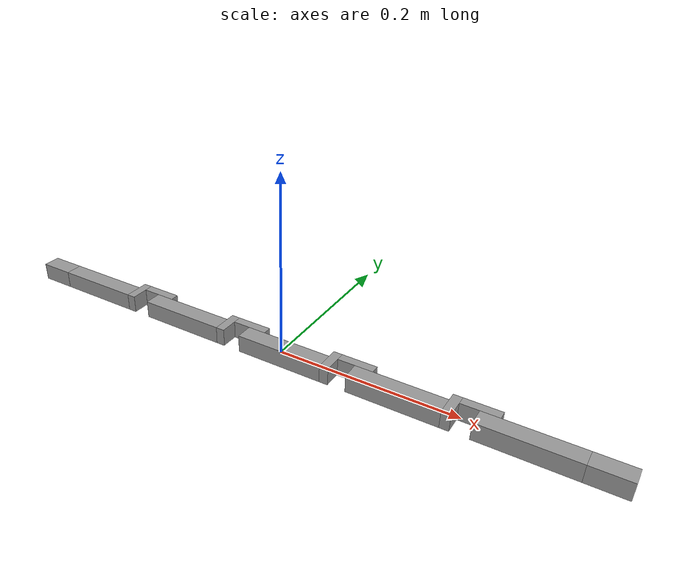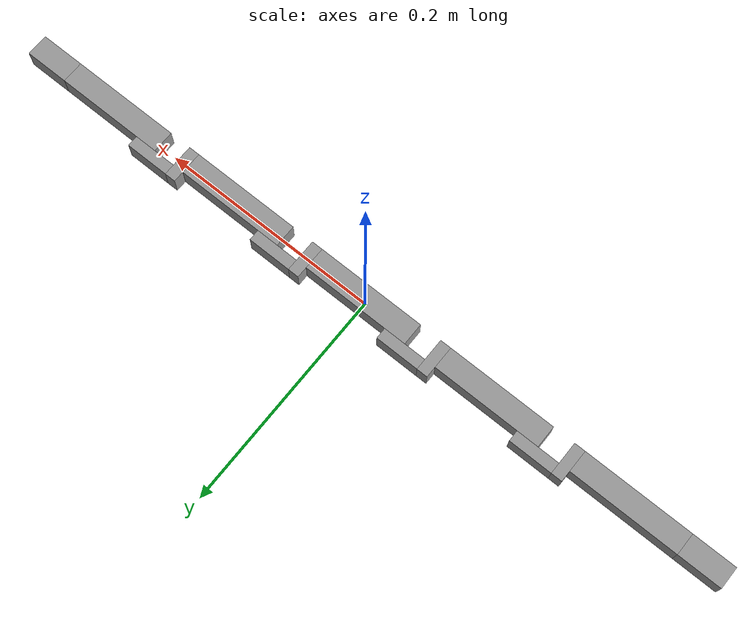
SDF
<?xml version='1.0'?>
<sdf version='1.6'>
  <model name='section_no_joint'>
    <link name='link_0'>
      <inertial>
        <mass>1</mass>
        <inertia>
          <ixx>0.166667</ixx>
          <ixy>0</ixy>
          <ixz>0</ixz>
          <iyy>0.166667</iyy>
          <iyz>0</iyz>
          <izz>0.166667</izz>
        </inertia>
        <pose frame=''>0 0 0 0 -0 0</pose>
      </inertial>
      <pose frame=''>-0.326364 -0.001818 0 0 -0 0</pose>
      <gravity>1</gravity>
      <self_collide>0</self_collide>
      <kinematic>0</kinematic>
      <enable_wind>0</enable_wind>
      <visual name='visual'>
        <pose frame=''>0 0 0 0 -0 0</pose>
        <geometry>
          <box>
            <size>0.04 0.02 0.02</size>
          </box>
        </geometry>
        <material>
          <lighting>1</lighting>
          <script>
            <uri>file://media/materials/scripts/gazebo.material</uri>
            <name>Gazebo/Grey</name>
          </script>
          <shader type='pixel'>
            <normal_map>__default__</normal_map>
          </shader>
          <ambient>0.3 0.3 0.3 1</ambient>
          <diffuse>0.7 0.7 0.7 1</diffuse>
          <specular>0.01 0.01 0.01 1</specular>
          <emissive>0 0 0 1</emissive>
        </material>
        <transparency>0</transparency>
        <cast_shadows>1</cast_shadows>
      </visual>
      <collision name='collision'>
        <laser_retro>0</laser_retro>
        <max_contacts>10</max_contacts>
        <pose frame=''>0 0 0 0 -0 0</pose>
        <geometry>
          <box>
            <size>0.04 0.02 0.02</size>
          </box>
        </geometry>
        <surface>
          <friction>
            <ode>
              <mu>1</mu>
              <mu2>1</mu2>
              <fdir1>0 0 0</fdir1>
              <slip1>0</slip1>
              <slip2>0</slip2>
            </ode>
            <torsional>
              <coefficient>1</coefficient>
              <patch_radius>0</patch_radius>
              <surface_radius>0</surface_radius>
              <use_patch_radius>1</use_patch_radius>
              <ode>
                <slip>0</slip>
              </ode>
            </torsional>
          </friction>
          <bounce>
            <restitution_coefficient>0</restitution_coefficient>
            <threshold>1e+06</threshold>
          </bounce>
          <contact>
            <collide_without_contact>0</collide_without_contact>
            <collide_without_contact_bitmask>1</collide_without_contact_bitmask>
            <collide_bitmask>1</collide_bitmask>
            <ode>
              <soft_cfm>0</soft_cfm>
              <soft_erp>0.2</soft_erp>
              <kp>1e+13</kp>
              <kd>1</kd>
              <max_vel>0.01</max_vel>
              <min_depth>0</min_depth>
            </ode>
            <bullet>
              <split_impulse>1</split_impulse>
              <split_impulse_penetration_threshold>-0.01</split_impulse_penetration_threshold>
              <soft_cfm>0</soft_cfm>
              <soft_erp>0.2</soft_erp>
              <kp>1e+13</kp>
              <kd>1</kd>
            </bullet>
          </contact>
        </surface>
      </collision>
    </link>
    <link name='link_1'>
      <inertial>
        <mass>1</mass>
        <inertia>
          <ixx>0.166667</ixx>
          <ixy>0</ixy>
          <ixz>0</ixz>
          <iyy>0.166667</iyy>
          <iyz>0</iyz>
          <izz>0.166667</izz>
        </inertia>
        <pose frame=''>0 0 0 0 -0 0</pose>
      </inertial>
      <pose frame=''>-0.256364 -0.001818 0 0 -0 0</pose>
      <gravity>1</gravity>
      <self_collide>0</self_collide>
      <kinematic>0</kinematic>
      <enable_wind>0</enable_wind>
      <visual name='visual'>
        <pose frame=''>0 0 0 0 -0 0</pose>
        <geometry>
          <box>
            <size>0.1 0.02 0.02</size>
          </box>
        </geometry>
        <material>
          <lighting>1</lighting>
          <script>
            <uri>file://media/materials/scripts/gazebo.material</uri>
            <name>Gazebo/Grey</name>
          </script>
          <shader type='pixel'>
            <normal_map>__default__</normal_map>
          </shader>
          <ambient>0.3 0.3 0.3 1</ambient>
          <diffuse>0.7 0.7 0.7 1</diffuse>
          <specular>0.01 0.01 0.01 1</specular>
          <emissive>0 0 0 1</emissive>
        </material>
        <transparency>0</transparency>
        <cast_shadows>1</cast_shadows>
      </visual>
      <collision name='collision'>
        <laser_retro>0</laser_retro>
        <max_contacts>10</max_contacts>
        <pose frame=''>0 0 0 0 -0 0</pose>
        <geometry>
          <box>
            <size>0.1 0.02 0.02</size>
          </box>
        </geometry>
        <surface>
          <friction>
            <ode>
              <mu>1</mu>
              <mu2>1</mu2>
              <fdir1>0 0 0</fdir1>
              <slip1>0</slip1>
              <slip2>0</slip2>
            </ode>
            <torsional>
              <coefficient>1</coefficient>
              <patch_radius>0</patch_radius>
              <surface_radius>0</surface_radius>
              <use_patch_radius>1</use_patch_radius>
              <ode>
                <slip>0</slip>
              </ode>
            </torsional>
          </friction>
          <bounce>
            <restitution_coefficient>0</restitution_coefficient>
            <threshold>1e+06</threshold>
          </bounce>
          <contact>
            <collide_without_contact>0</collide_without_contact>
            <collide_without_contact_bitmask>1</collide_without_contact_bitmask>
            <collide_bitmask>1</collide_bitmask>
            <ode>
              <soft_cfm>0</soft_cfm>
              <soft_erp>0.2</soft_erp>
              <kp>1e+13</kp>
              <kd>1</kd>
              <max_vel>0.01</max_vel>
              <min_depth>0</min_depth>
            </ode>
            <bullet>
              <split_impulse>1</split_impulse>
              <split_impulse_penetration_threshold>-0.01</split_impulse_penetration_threshold>
              <soft_cfm>0</soft_cfm>
              <soft_erp>0.2</soft_erp>
              <kp>1e+13</kp>
              <kd>1</kd>
            </bullet>
          </contact>
        </surface>
      </collision>
    </link>
    <link name='link_10'>
      <inertial>
        <mass>1</mass>
        <inertia>
          <ixx>0.166667</ixx>
          <ixy>0</ixy>
          <ixz>0</ixz>
          <iyy>0.166667</iyy>
          <iyz>0</iyz>
          <izz>0.166667</izz>
        </inertia>
        <pose frame=''>0 0 0 0 -0 0</pose>
      </inertial>
      <pose frame=''>0.188636 0.003182 0 0 -0 0</pose>
      <gravity>1</gravity>
      <self_collide>0</self_collide>
      <kinematic>0</kinematic>
      <enable_wind>0</enable_wind>
      <visual name='visual'>
        <pose frame=''>0 0 0 0 -0 0</pose>
        <geometry>
          <box>
            <size>0.01 0.03 0.02</size>
          </box>
        </geometry>
        <material>
          <lighting>1</lighting>
          <script>
            <uri>file://media/materials/scripts/gazebo.material</uri>
            <name>Gazebo/Grey</name>
          </script>
          <shader type='pixel'>
            <normal_map>__default__</normal_map>
          </shader>
          <ambient>0.3 0.3 0.3 1</ambient>
          <diffuse>0.7 0.7 0.7 1</diffuse>
          <specular>0.01 0.01 0.01 1</specular>
          <emissive>0 0 0 1</emissive>
        </material>
        <transparency>0</transparency>
        <cast_shadows>1</cast_shadows>
      </visual>
      <visual name='ModelPreview_0::link_10::visual_1'>
        <pose frame=''>0.025 0.01 0 0 -0 0</pose>
        <geometry>
          <box>
            <size>0.04 0.01 0.02</size>
          </box>
        </geometry>
        <material>
          <lighting>1</lighting>
          <script>
            <uri>file://media/materials/scripts/gazebo.material</uri>
            <name>Gazebo/Grey</name>
          </script>
          <shader type='pixel'>
            <normal_map>__default__</normal_map>
          </shader>
          <ambient>0.3 0.3 0.3 1</ambient>
          <diffuse>0.7 0.7 0.7 1</diffuse>
          <specular>0.01 0.01 0.01 1</specular>
          <emissive>0 0 0 1</emissive>
        </material>
        <transparency>0</transparency>
        <cast_shadows>1</cast_shadows>
      </visual>
      <collision name='collision'>
        <laser_retro>0</laser_retro>
        <max_contacts>10</max_contacts>
        <pose frame=''>0 0 0 0 -0 0</pose>
        <geometry>
          <box>
            <size>0.01 0.03 0.02</size>
          </box>
        </geometry>
        <surface>
          <friction>
            <ode>
              <mu>1</mu>
              <mu2>1</mu2>
              <fdir1>0 0 0</fdir1>
              <slip1>0</slip1>
              <slip2>0</slip2>
            </ode>
            <torsional>
              <coefficient>1</coefficient>
              <patch_radius>0</patch_radius>
              <surface_radius>0</surface_radius>
              <use_patch_radius>1</use_patch_radius>
              <ode>
                <slip>0</slip>
              </ode>
            </torsional>
          </friction>
          <bounce>
            <restitution_coefficient>0</restitution_coefficient>
            <threshold>1e+06</threshold>
          </bounce>
          <contact>
            <collide_without_contact>0</collide_without_contact>
            <collide_without_contact_bitmask>1</collide_without_contact_bitmask>
            <collide_bitmask>1</collide_bitmask>
            <ode>
              <soft_cfm>0</soft_cfm>
              <soft_erp>0.2</soft_erp>
              <kp>1e+13</kp>
              <kd>1</kd>
              <max_vel>0.01</max_vel>
              <min_depth>0</min_depth>
            </ode>
            <bullet>
              <split_impulse>1</split_impulse>
              <split_impulse_penetration_threshold>-0.01</split_impulse_penetration_threshold>
              <soft_cfm>0</soft_cfm>
              <soft_erp>0.2</soft_erp>
              <kp>1e+13</kp>
              <kd>1</kd>
            </bullet>
          </contact>
        </surface>
      </collision>
      <collision name='collision_1'>
        <laser_retro>0</laser_retro>
        <max_contacts>10</max_contacts>
        <pose frame=''>0.025 0.01 0 0 -0 0</pose>
        <geometry>
          <box>
            <size>0.04 0.01 0.02</size>
          </box>
        </geometry>
        <surface>
          <friction>
            <ode>
              <mu>1</mu>
              <mu2>1</mu2>
              <fdir1>0 0 0</fdir1>
              <slip1>0</slip1>
              <slip2>0</slip2>
            </ode>
            <torsional>
              <coefficient>1</coefficient>
              <patch_radius>0</patch_radius>
              <surface_radius>0</surface_radius>
              <use_patch_radius>1</use_patch_radius>
              <ode>
                <slip>0</slip>
              </ode>
            </torsional>
          </friction>
          <bounce>
            <restitution_coefficient>0</restitution_coefficient>
            <threshold>1e+06</threshold>
          </bounce>
          <contact>
            <collide_without_contact>0</collide_without_contact>
            <collide_without_contact_bitmask>1</collide_without_contact_bitmask>
            <collide_bitmask>1</collide_bitmask>
            <ode>
              <soft_cfm>0</soft_cfm>
              <soft_erp>0.2</soft_erp>
              <kp>1e+13</kp>
              <kd>1</kd>
              <max_vel>0.01</max_vel>
              <min_depth>0</min_depth>
            </ode>
            <bullet>
              <split_impulse>1</split_impulse>
              <split_impulse_penetration_threshold>-0.01</split_impulse_penetration_threshold>
              <soft_cfm>0</soft_cfm>
              <soft_erp>0.2</soft_erp>
              <kp>1e+13</kp>
              <kd>1</kd>
            </bullet>
          </contact>
        </surface>
      </collision>
    </link>
    <link name='link_11'>
      <inertial>
        <mass>1</mass>
        <inertia>
          <ixx>0.166667</ixx>
          <ixy>0</ixy>
          <ixz>0</ixz>
          <iyy>0.166667</iyy>
          <iyz>0</iyz>
          <izz>0.166667</izz>
        </inertia>
        <pose frame=''>0 0 0 0 -0 0</pose>
      </inertial>
      <pose frame=''>0.263636 -0.001818 0 0 -0 0</pose>
      <gravity>1</gravity>
      <self_collide>0</self_collide>
      <kinematic>0</kinematic>
      <enable_wind>0</enable_wind>
      <visual name='visual'>
        <pose frame=''>0 0 0 0 -0 0</pose>
        <geometry>
          <box>
            <size>0.1 0.02 0.02</size>
          </box>
        </geometry>
        <material>
          <lighting>1</lighting>
          <script>
            <uri>file://media/materials/scripts/gazebo.material</uri>
            <name>Gazebo/Grey</name>
          </script>
          <shader type='pixel'>
            <normal_map>__default__</normal_map>
          </shader>
          <ambient>0.3 0.3 0.3 1</ambient>
          <diffuse>0.7 0.7 0.7 1</diffuse>
          <specular>0.01 0.01 0.01 1</specular>
          <emissive>0 0 0 1</emissive>
        </material>
        <transparency>0</transparency>
        <cast_shadows>1</cast_shadows>
      </visual>
      <collision name='collision'>
        <laser_retro>0</laser_retro>
        <max_contacts>10</max_contacts>
        <pose frame=''>0 0 0 0 -0 0</pose>
        <geometry>
          <box>
            <size>0.1 0.02 0.02</size>
          </box>
        </geometry>
        <surface>
          <friction>
            <ode>
              <mu>1</mu>
              <mu2>1</mu2>
              <fdir1>0 0 0</fdir1>
              <slip1>0</slip1>
              <slip2>0</slip2>
            </ode>
            <torsional>
              <coefficient>1</coefficient>
              <patch_radius>0</patch_radius>
              <surface_radius>0</surface_radius>
              <use_patch_radius>1</use_patch_radius>
              <ode>
                <slip>0</slip>
              </ode>
            </torsional>
          </friction>
          <bounce>
            <restitution_coefficient>0</restitution_coefficient>
            <threshold>1e+06</threshold>
          </bounce>
          <contact>
            <collide_without_contact>0</collide_without_contact>
            <collide_without_contact_bitmask>1</collide_without_contact_bitmask>
            <collide_bitmask>1</collide_bitmask>
            <ode>
              <soft_cfm>0</soft_cfm>
              <soft_erp>0.2</soft_erp>
              <kp>1e+13</kp>
              <kd>1</kd>
              <max_vel>0.01</max_vel>
              <min_depth>0</min_depth>
            </ode>
            <bullet>
              <split_impulse>1</split_impulse>
              <split_impulse_penetration_threshold>-0.01</split_impulse_penetration_threshold>
              <soft_cfm>0</soft_cfm>
              <soft_erp>0.2</soft_erp>
              <kp>1e+13</kp>
              <kd>1</kd>
            </bullet>
          </contact>
        </surface>
      </collision>
    </link>
    <link name='link_12'>
      <inertial>
        <mass>1</mass>
        <inertia>
          <ixx>0.166667</ixx>
          <ixy>0</ixy>
          <ixz>0</ixz>
          <iyy>0.166667</iyy>
          <iyz>0</iyz>
          <izz>0.166667</izz>
        </inertia>
        <pose frame=''>0 0 0 0 -0 0</pose>
      </inertial>
      <pose frame=''>0.333636 -0.001818 0 0 -0 0</pose>
      <gravity>1</gravity>
      <self_collide>0</self_collide>
      <kinematic>0</kinematic>
      <enable_wind>0</enable_wind>
      <visual name='visual'>
        <pose frame=''>0 0 0 0 -0 0</pose>
        <geometry>
          <box>
            <size>0.04 0.02 0.02</size>
          </box>
        </geometry>
        <material>
          <lighting>1</lighting>
          <script>
            <uri>file://media/materials/scripts/gazebo.material</uri>
            <name>Gazebo/Grey</name>
          </script>
          <shader type='pixel'>
            <normal_map>__default__</normal_map>
          </shader>
          <ambient>0.3 0.3 0.3 1</ambient>
          <diffuse>0.7 0.7 0.7 1</diffuse>
          <specular>0.01 0.01 0.01 1</specular>
          <emissive>0 0 0 1</emissive>
        </material>
        <transparency>0</transparency>
        <cast_shadows>1</cast_shadows>
      </visual>
      <collision name='collision'>
        <laser_retro>0</laser_retro>
        <max_contacts>10</max_contacts>
        <pose frame=''>0 0 0 0 -0 0</pose>
        <geometry>
          <box>
            <size>0.04 0.02 0.02</size>
          </box>
        </geometry>
        <surface>
          <friction>
            <ode>
              <mu>1</mu>
              <mu2>1</mu2>
              <fdir1>0 0 0</fdir1>
              <slip1>0</slip1>
              <slip2>0</slip2>
            </ode>
            <torsional>
              <coefficient>1</coefficient>
              <patch_radius>0</patch_radius>
              <surface_radius>0</surface_radius>
              <use_patch_radius>1</use_patch_radius>
              <ode>
                <slip>0</slip>
              </ode>
            </torsional>
          </friction>
          <bounce>
            <restitution_coefficient>0</restitution_coefficient>
            <threshold>1e+06</threshold>
          </bounce>
          <contact>
            <collide_without_contact>0</collide_without_contact>
            <collide_without_contact_bitmask>1</collide_without_contact_bitmask>
            <collide_bitmask>1</collide_bitmask>
            <ode>
              <soft_cfm>0</soft_cfm>
              <soft_erp>0.2</soft_erp>
              <kp>1e+13</kp>
              <kd>1</kd>
              <max_vel>0.01</max_vel>
              <min_depth>0</min_depth>
            </ode>
            <bullet>
              <split_impulse>1</split_impulse>
              <split_impulse_penetration_threshold>-0.01</split_impulse_penetration_threshold>
              <soft_cfm>0</soft_cfm>
              <soft_erp>0.2</soft_erp>
              <kp>1e+13</kp>
              <kd>1</kd>
            </bullet>
          </contact>
        </surface>
      </collision>
    </link>
    <link name='link_2'>
      <inertial>
        <mass>1</mass>
        <inertia>
          <ixx>0.166667</ixx>
          <ixy>0</ixy>
          <ixz>0</ixz>
          <iyy>0.166667</iyy>
          <iyz>0</iyz>
          <izz>0.166667</izz>
        </inertia>
        <pose frame=''>0 0 0 0 -0 0</pose>
      </inertial>
      <pose frame=''>-0.201364 0.003182 0 0 -0 0</pose>
      <gravity>1</gravity>
      <self_collide>0</self_collide>
      <kinematic>0</kinematic>
      <enable_wind>0</enable_wind>
      <visual name='visual'>
        <pose frame=''>0 0 0 0 -0 0</pose>
        <geometry>
          <box>
            <size>0.01 0.03 0.02</size>
          </box>
        </geometry>
        <material>
          <lighting>1</lighting>
          <script>
            <uri>file://media/materials/scripts/gazebo.material</uri>
            <name>Gazebo/Grey</name>
          </script>
          <shader type='pixel'>
            <normal_map>__default__</normal_map>
          </shader>
          <ambient>0.3 0.3 0.3 1</ambient>
          <diffuse>0.7 0.7 0.7 1</diffuse>
          <specular>0.01 0.01 0.01 1</specular>
          <emissive>0 0 0 1</emissive>
        </material>
        <transparency>0</transparency>
        <cast_shadows>1</cast_shadows>
      </visual>
      <visual name='ModelPreview_0::link_2::visual_1'>
        <pose frame=''>0.025 0.01 0 0 -0 0</pose>
        <geometry>
          <box>
            <size>0.04 0.01 0.02</size>
          </box>
        </geometry>
        <material>
          <lighting>1</lighting>
          <script>
            <uri>file://media/materials/scripts/gazebo.material</uri>
            <name>Gazebo/Grey</name>
          </script>
          <shader type='pixel'>
            <normal_map>__default__</normal_map>
          </shader>
          <ambient>0.3 0.3 0.3 1</ambient>
          <diffuse>0.7 0.7 0.7 1</diffuse>
          <specular>0.01 0.01 0.01 1</specular>
          <emissive>0 0 0 1</emissive>
        </material>
        <transparency>0</transparency>
        <cast_shadows>1</cast_shadows>
      </visual>
      <collision name='collision'>
        <laser_retro>0</laser_retro>
        <max_contacts>10</max_contacts>
        <pose frame=''>0 0 0 0 -0 0</pose>
        <geometry>
          <box>
            <size>0.01 0.03 0.02</size>
          </box>
        </geometry>
        <surface>
          <friction>
            <ode>
              <mu>1</mu>
              <mu2>1</mu2>
              <fdir1>0 0 0</fdir1>
              <slip1>0</slip1>
              <slip2>0</slip2>
            </ode>
            <torsional>
              <coefficient>1</coefficient>
              <patch_radius>0</patch_radius>
              <surface_radius>0</surface_radius>
              <use_patch_radius>1</use_patch_radius>
              <ode>
                <slip>0</slip>
              </ode>
            </torsional>
          </friction>
          <bounce>
            <restitution_coefficient>0</restitution_coefficient>
            <threshold>1e+06</threshold>
          </bounce>
          <contact>
            <collide_without_contact>0</collide_without_contact>
            <collide_without_contact_bitmask>1</collide_without_contact_bitmask>
            <collide_bitmask>1</collide_bitmask>
            <ode>
              <soft_cfm>0</soft_cfm>
              <soft_erp>0.2</soft_erp>
              <kp>1e+13</kp>
              <kd>1</kd>
              <max_vel>0.01</max_vel>
              <min_depth>0</min_depth>
            </ode>
            <bullet>
              <split_impulse>1</split_impulse>
              <split_impulse_penetration_threshold>-0.01</split_impulse_penetration_threshold>
              <soft_cfm>0</soft_cfm>
              <soft_erp>0.2</soft_erp>
              <kp>1e+13</kp>
              <kd>1</kd>
            </bullet>
          </contact>
        </surface>
      </collision>
      <collision name='collision_1'>
        <laser_retro>0</laser_retro>
        <max_contacts>10</max_contacts>
        <pose frame=''>0.025 0.01 0 0 -0 0</pose>
        <geometry>
          <box>
            <size>0.04 0.01 0.02</size>
          </box>
        </geometry>
        <surface>
          <friction>
            <ode>
              <mu>1</mu>
              <mu2>1</mu2>
              <fdir1>0 0 0</fdir1>
              <slip1>0</slip1>
              <slip2>0</slip2>
            </ode>
            <torsional>
              <coefficient>1</coefficient>
              <patch_radius>0</patch_radius>
              <surface_radius>0</surface_radius>
              <use_patch_radius>1</use_patch_radius>
              <ode>
                <slip>0</slip>
              </ode>
            </torsional>
          </friction>
          <bounce>
            <restitution_coefficient>0</restitution_coefficient>
            <threshold>1e+06</threshold>
          </bounce>
          <contact>
            <collide_without_contact>0</collide_without_contact>
            <collide_without_contact_bitmask>1</collide_without_contact_bitmask>
            <collide_bitmask>1</collide_bitmask>
            <ode>
              <soft_cfm>0</soft_cfm>
              <soft_erp>0.2</soft_erp>
              <kp>1e+13</kp>
              <kd>1</kd>
              <max_vel>0.01</max_vel>
              <min_depth>0</min_depth>
            </ode>
            <bullet>
              <split_impulse>1</split_impulse>
              <split_impulse_penetration_threshold>-0.01</split_impulse_penetration_threshold>
              <soft_cfm>0</soft_cfm>
              <soft_erp>0.2</soft_erp>
              <kp>1e+13</kp>
              <kd>1</kd>
            </bullet>
          </contact>
        </surface>
      </collision>
    </link>
    <link name='link_3'>
      <inertial>
        <mass>1</mass>
        <inertia>
          <ixx>0.166667</ixx>
          <ixy>0</ixy>
          <ixz>0</ixz>
          <iyy>0.166667</iyy>
          <iyz>0</iyz>
          <izz>0.166667</izz>
        </inertia>
        <pose frame=''>0 0 0 0 -0 0</pose>
      </inertial>
      <pose frame=''>-0.126364 -0.001818 0 0 -0 0</pose>
      <gravity>1</gravity>
      <self_collide>0</self_collide>
      <kinematic>0</kinematic>
      <enable_wind>0</enable_wind>
      <visual name='visual'>
        <pose frame=''>0 0 0 0 -0 0</pose>
        <geometry>
          <box>
            <size>0.1 0.02 0.02</size>
          </box>
        </geometry>
        <material>
          <lighting>1</lighting>
          <script>
            <uri>file://media/materials/scripts/gazebo.material</uri>
            <name>Gazebo/Grey</name>
          </script>
          <shader type='pixel'>
            <normal_map>__default__</normal_map>
          </shader>
          <ambient>0.3 0.3 0.3 1</ambient>
          <diffuse>0.7 0.7 0.7 1</diffuse>
          <specular>0.01 0.01 0.01 1</specular>
          <emissive>0 0 0 1</emissive>
        </material>
        <transparency>0</transparency>
        <cast_shadows>1</cast_shadows>
      </visual>
      <collision name='collision'>
        <laser_retro>0</laser_retro>
        <max_contacts>10</max_contacts>
        <pose frame=''>0 0 0 0 -0 0</pose>
        <geometry>
          <box>
            <size>0.1 0.02 0.02</size>
          </box>
        </geometry>
        <surface>
          <friction>
            <ode>
              <mu>1</mu>
              <mu2>1</mu2>
              <fdir1>0 0 0</fdir1>
              <slip1>0</slip1>
              <slip2>0</slip2>
            </ode>
            <torsional>
              <coefficient>1</coefficient>
              <patch_radius>0</patch_radius>
              <surface_radius>0</surface_radius>
              <use_patch_radius>1</use_patch_radius>
              <ode>
                <slip>0</slip>
              </ode>
            </torsional>
          </friction>
          <bounce>
            <restitution_coefficient>0</restitution_coefficient>
            <threshold>1e+06</threshold>
          </bounce>
          <contact>
            <collide_without_contact>0</collide_without_contact>
            <collide_without_contact_bitmask>1</collide_without_contact_bitmask>
            <collide_bitmask>1</collide_bitmask>
            <ode>
              <soft_cfm>0</soft_cfm>
              <soft_erp>0.2</soft_erp>
              <kp>1e+13</kp>
              <kd>1</kd>
              <max_vel>0.01</max_vel>
              <min_depth>0</min_depth>
            </ode>
            <bullet>
              <split_impulse>1</split_impulse>
              <split_impulse_penetration_threshold>-0.01</split_impulse_penetration_threshold>
              <soft_cfm>0</soft_cfm>
              <soft_erp>0.2</soft_erp>
              <kp>1e+13</kp>
              <kd>1</kd>
            </bullet>
          </contact>
        </surface>
      </collision>
    </link>
    <link name='link_6'>
      <inertial>
        <mass>1</mass>
        <inertia>
          <ixx>0.166667</ixx>
          <ixy>0</ixy>
          <ixz>0</ixz>
          <iyy>0.166667</iyy>
          <iyz>0</iyz>
          <izz>0.166667</izz>
        </inertia>
        <pose frame=''>0 0 0 0 -0 0</pose>
      </inertial>
      <pose frame=''>-0.071364 0.003182 0 0 -0 0</pose>
      <gravity>1</gravity>
      <self_collide>0</self_collide>
      <kinematic>0</kinematic>
      <enable_wind>0</enable_wind>
      <visual name='visual'>
        <pose frame=''>0 0 0 0 -0 0</pose>
        <geometry>
          <box>
            <size>0.01 0.03 0.02</size>
          </box>
        </geometry>
        <material>
          <lighting>1</lighting>
          <script>
            <uri>file://media/materials/scripts/gazebo.material</uri>
            <name>Gazebo/Grey</name>
          </script>
          <shader type='pixel'>
            <normal_map>__default__</normal_map>
          </shader>
          <ambient>0.3 0.3 0.3 1</ambient>
          <diffuse>0.7 0.7 0.7 1</diffuse>
          <specular>0.01 0.01 0.01 1</specular>
          <emissive>0 0 0 1</emissive>
        </material>
        <transparency>0</transparency>
        <cast_shadows>1</cast_shadows>
      </visual>
      <visual name='ModelPreview_0::link_6::visual_1'>
        <pose frame=''>0.025 0.01 0 0 -0 0</pose>
        <geometry>
          <box>
            <size>0.04 0.01 0.02</size>
          </box>
        </geometry>
        <material>
          <lighting>1</lighting>
          <script>
            <uri>file://media/materials/scripts/gazebo.material</uri>
            <name>Gazebo/Grey</name>
          </script>
          <shader type='pixel'>
            <normal_map>__default__</normal_map>
          </shader>
          <ambient>0.3 0.3 0.3 1</ambient>
          <diffuse>0.7 0.7 0.7 1</diffuse>
          <specular>0.01 0.01 0.01 1</specular>
          <emissive>0 0 0 1</emissive>
        </material>
        <transparency>0</transparency>
        <cast_shadows>1</cast_shadows>
      </visual>
      <collision name='collision'>
        <laser_retro>0</laser_retro>
        <max_contacts>10</max_contacts>
        <pose frame=''>0 0 0 0 -0 0</pose>
        <geometry>
          <box>
            <size>0.01 0.03 0.02</size>
          </box>
        </geometry>
        <surface>
          <friction>
            <ode>
              <mu>1</mu>
              <mu2>1</mu2>
              <fdir1>0 0 0</fdir1>
              <slip1>0</slip1>
              <slip2>0</slip2>
            </ode>
            <torsional>
              <coefficient>1</coefficient>
              <patch_radius>0</patch_radius>
              <surface_radius>0</surface_radius>
              <use_patch_radius>1</use_patch_radius>
              <ode>
                <slip>0</slip>
              </ode>
            </torsional>
          </friction>
          <bounce>
            <restitution_coefficient>0</restitution_coefficient>
            <threshold>1e+06</threshold>
          </bounce>
          <contact>
            <collide_without_contact>0</collide_without_contact>
            <collide_without_contact_bitmask>1</collide_without_contact_bitmask>
            <collide_bitmask>1</collide_bitmask>
            <ode>
              <soft_cfm>0</soft_cfm>
              <soft_erp>0.2</soft_erp>
              <kp>1e+13</kp>
              <kd>1</kd>
              <max_vel>0.01</max_vel>
              <min_depth>0</min_depth>
            </ode>
            <bullet>
              <split_impulse>1</split_impulse>
              <split_impulse_penetration_threshold>-0.01</split_impulse_penetration_threshold>
              <soft_cfm>0</soft_cfm>
              <soft_erp>0.2</soft_erp>
              <kp>1e+13</kp>
              <kd>1</kd>
            </bullet>
          </contact>
        </surface>
      </collision>
      <collision name='collision_1'>
        <laser_retro>0</laser_retro>
        <max_contacts>10</max_contacts>
        <pose frame=''>0.025 0.01 0 0 -0 0</pose>
        <geometry>
          <box>
            <size>0.04 0.01 0.02</size>
          </box>
        </geometry>
        <surface>
          <friction>
            <ode>
              <mu>1</mu>
              <mu2>1</mu2>
              <fdir1>0 0 0</fdir1>
              <slip1>0</slip1>
              <slip2>0</slip2>
            </ode>
            <torsional>
              <coefficient>1</coefficient>
              <patch_radius>0</patch_radius>
              <surface_radius>0</surface_radius>
              <use_patch_radius>1</use_patch_radius>
              <ode>
                <slip>0</slip>
              </ode>
            </torsional>
          </friction>
          <bounce>
            <restitution_coefficient>0</restitution_coefficient>
            <threshold>1e+06</threshold>
          </bounce>
          <contact>
            <collide_without_contact>0</collide_without_contact>
            <collide_without_contact_bitmask>1</collide_without_contact_bitmask>
            <collide_bitmask>1</collide_bitmask>
            <ode>
              <soft_cfm>0</soft_cfm>
              <soft_erp>0.2</soft_erp>
              <kp>1e+13</kp>
              <kd>1</kd>
              <max_vel>0.01</max_vel>
              <min_depth>0</min_depth>
            </ode>
            <bullet>
              <split_impulse>1</split_impulse>
              <split_impulse_penetration_threshold>-0.01</split_impulse_penetration_threshold>
              <soft_cfm>0</soft_cfm>
              <soft_erp>0.2</soft_erp>
              <kp>1e+13</kp>
              <kd>1</kd>
            </bullet>
          </contact>
        </surface>
      </collision>
    </link>
    <link name='link_7'>
      <inertial>
        <mass>1</mass>
        <inertia>
          <ixx>0.166667</ixx>
          <ixy>0</ixy>
          <ixz>0</ixz>
          <iyy>0.166667</iyy>
          <iyz>0</iyz>
          <izz>0.166667</izz>
        </inertia>
        <pose frame=''>0 0 0 0 -0 0</pose>
      </inertial>
      <pose frame=''>0.003636 -0.001818 0 0 -0 0</pose>
      <gravity>1</gravity>
      <self_collide>0</self_collide>
      <kinematic>0</kinematic>
      <enable_wind>0</enable_wind>
      <visual name='visual'>
        <pose frame=''>0 0 0 0 -0 0</pose>
        <geometry>
          <box>
            <size>0.1 0.02 0.02</size>
          </box>
        </geometry>
        <material>
          <lighting>1</lighting>
          <script>
            <uri>file://media/materials/scripts/gazebo.material</uri>
            <name>Gazebo/Grey</name>
          </script>
          <shader type='pixel'>
            <normal_map>__default__</normal_map>
          </shader>
          <ambient>0.3 0.3 0.3 1</ambient>
          <diffuse>0.7 0.7 0.7 1</diffuse>
          <specular>0.01 0.01 0.01 1</specular>
          <emissive>0 0 0 1</emissive>
        </material>
        <transparency>0</transparency>
        <cast_shadows>1</cast_shadows>
      </visual>
      <collision name='collision'>
        <laser_retro>0</laser_retro>
        <max_contacts>10</max_contacts>
        <pose frame=''>0 0 0 0 -0 0</pose>
        <geometry>
          <box>
            <size>0.1 0.02 0.02</size>
          </box>
        </geometry>
        <surface>
          <friction>
            <ode>
              <mu>1</mu>
              <mu2>1</mu2>
              <fdir1>0 0 0</fdir1>
              <slip1>0</slip1>
              <slip2>0</slip2>
            </ode>
            <torsional>
              <coefficient>1</coefficient>
              <patch_radius>0</patch_radius>
              <surface_radius>0</surface_radius>
              <use_patch_radius>1</use_patch_radius>
              <ode>
                <slip>0</slip>
              </ode>
            </torsional>
          </friction>
          <bounce>
            <restitution_coefficient>0</restitution_coefficient>
            <threshold>1e+06</threshold>
          </bounce>
          <contact>
            <collide_without_contact>0</collide_without_contact>
            <collide_without_contact_bitmask>1</collide_without_contact_bitmask>
            <collide_bitmask>1</collide_bitmask>
            <ode>
              <soft_cfm>0</soft_cfm>
              <soft_erp>0.2</soft_erp>
              <kp>1e+13</kp>
              <kd>1</kd>
              <max_vel>0.01</max_vel>
              <min_depth>0</min_depth>
            </ode>
            <bullet>
              <split_impulse>1</split_impulse>
              <split_impulse_penetration_threshold>-0.01</split_impulse_penetration_threshold>
              <soft_cfm>0</soft_cfm>
              <soft_erp>0.2</soft_erp>
              <kp>1e+13</kp>
              <kd>1</kd>
            </bullet>
          </contact>
        </surface>
      </collision>
    </link>
    <link name='link_8'>
      <inertial>
        <mass>1</mass>
        <inertia>
          <ixx>0.166667</ixx>
          <ixy>0</ixy>
          <ixz>0</ixz>
          <iyy>0.166667</iyy>
          <iyz>0</iyz>
          <izz>0.166667</izz>
        </inertia>
        <pose frame=''>0 0 0 0 -0 0</pose>
      </inertial>
      <pose frame=''>0.058636 0.003182 0 0 -0 0</pose>
      <gravity>1</gravity>
      <self_collide>0</self_collide>
      <kinematic>0</kinematic>
      <enable_wind>0</enable_wind>
      <visual name='visual'>
        <pose frame=''>0 0 0 0 -0 0</pose>
        <geometry>
          <box>
            <size>0.01 0.03 0.02</size>
          </box>
        </geometry>
        <material>
          <lighting>1</lighting>
          <script>
            <uri>file://media/materials/scripts/gazebo.material</uri>
            <name>Gazebo/Grey</name>
          </script>
          <shader type='pixel'>
            <normal_map>__default__</normal_map>
          </shader>
          <ambient>0.3 0.3 0.3 1</ambient>
          <diffuse>0.7 0.7 0.7 1</diffuse>
          <specular>0.01 0.01 0.01 1</specular>
          <emissive>0 0 0 1</emissive>
        </material>
        <transparency>0</transparency>
        <cast_shadows>1</cast_shadows>
      </visual>
      <visual name='ModelPreview_0::link_8::visual_1'>
        <pose frame=''>0.025 0.01 0 0 -0 0</pose>
        <geometry>
          <box>
            <size>0.04 0.01 0.02</size>
          </box>
        </geometry>
        <material>
          <lighting>1</lighting>
          <script>
            <uri>file://media/materials/scripts/gazebo.material</uri>
            <name>Gazebo/Grey</name>
          </script>
          <shader type='pixel'>
            <normal_map>__default__</normal_map>
          </shader>
          <ambient>0.3 0.3 0.3 1</ambient>
          <diffuse>0.7 0.7 0.7 1</diffuse>
          <specular>0.01 0.01 0.01 1</specular>
          <emissive>0 0 0 1</emissive>
        </material>
        <transparency>0</transparency>
        <cast_shadows>1</cast_shadows>
      </visual>
      <collision name='collision'>
        <laser_retro>0</laser_retro>
        <max_contacts>10</max_contacts>
        <pose frame=''>0 0 0 0 -0 0</pose>
        <geometry>
          <box>
            <size>0.01 0.03 0.02</size>
          </box>
        </geometry>
        <surface>
          <friction>
            <ode>
              <mu>1</mu>
              <mu2>1</mu2>
              <fdir1>0 0 0</fdir1>
              <slip1>0</slip1>
              <slip2>0</slip2>
            </ode>
            <torsional>
              <coefficient>1</coefficient>
              <patch_radius>0</patch_radius>
              <surface_radius>0</surface_radius>
              <use_patch_radius>1</use_patch_radius>
              <ode>
                <slip>0</slip>
              </ode>
            </torsional>
          </friction>
          <bounce>
            <restitution_coefficient>0</restitution_coefficient>
            <threshold>1e+06</threshold>
          </bounce>
          <contact>
            <collide_without_contact>0</collide_without_contact>
            <collide_without_contact_bitmask>1</collide_without_contact_bitmask>
            <collide_bitmask>1</collide_bitmask>
            <ode>
              <soft_cfm>0</soft_cfm>
              <soft_erp>0.2</soft_erp>
              <kp>1e+13</kp>
              <kd>1</kd>
              <max_vel>0.01</max_vel>
              <min_depth>0</min_depth>
            </ode>
            <bullet>
              <split_impulse>1</split_impulse>
              <split_impulse_penetration_threshold>-0.01</split_impulse_penetration_threshold>
              <soft_cfm>0</soft_cfm>
              <soft_erp>0.2</soft_erp>
              <kp>1e+13</kp>
              <kd>1</kd>
            </bullet>
          </contact>
        </surface>
      </collision>
      <collision name='collision_1'>
        <laser_retro>0</laser_retro>
        <max_contacts>10</max_contacts>
        <pose frame=''>0.025 0.01 0 0 -0 0</pose>
        <geometry>
          <box>
            <size>0.04 0.01 0.02</size>
          </box>
        </geometry>
        <surface>
          <friction>
            <ode>
              <mu>1</mu>
              <mu2>1</mu2>
              <fdir1>0 0 0</fdir1>
              <slip1>0</slip1>
              <slip2>0</slip2>
            </ode>
            <torsional>
              <coefficient>1</coefficient>
              <patch_radius>0</patch_radius>
              <surface_radius>0</surface_radius>
              <use_patch_radius>1</use_patch_radius>
              <ode>
                <slip>0</slip>
              </ode>
            </torsional>
          </friction>
          <bounce>
            <restitution_coefficient>0</restitution_coefficient>
            <threshold>1e+06</threshold>
          </bounce>
          <contact>
            <collide_without_contact>0</collide_without_contact>
            <collide_without_contact_bitmask>1</collide_without_contact_bitmask>
            <collide_bitmask>1</collide_bitmask>
            <ode>
              <soft_cfm>0</soft_cfm>
              <soft_erp>0.2</soft_erp>
              <kp>1e+13</kp>
              <kd>1</kd>
              <max_vel>0.01</max_vel>
              <min_depth>0</min_depth>
            </ode>
            <bullet>
              <split_impulse>1</split_impulse>
              <split_impulse_penetration_threshold>-0.01</split_impulse_penetration_threshold>
              <soft_cfm>0</soft_cfm>
              <soft_erp>0.2</soft_erp>
              <kp>1e+13</kp>
              <kd>1</kd>
            </bullet>
          </contact>
        </surface>
      </collision>
    </link>
    <link name='link_9'>
      <inertial>
        <mass>1</mass>
        <inertia>
          <ixx>0.166667</ixx>
          <ixy>0</ixy>
          <ixz>0</ixz>
          <iyy>0.166667</iyy>
          <iyz>0</iyz>
          <izz>0.166667</izz>
        </inertia>
        <pose frame=''>0 0 0 0 -0 0</pose>
      </inertial>
      <pose frame=''>0.133636 -0.001818 0 0 -0 0</pose>
      <gravity>1</gravity>
      <self_collide>0</self_collide>
      <kinematic>0</kinematic>
      <enable_wind>0</enable_wind>
      <visual name='visual'>
        <pose frame=''>0 0 0 0 -0 0</pose>
        <geometry>
          <box>
            <size>0.1 0.02 0.02</size>
          </box>
        </geometry>
        <material>
          <lighting>1</lighting>
          <script>
            <uri>file://media/materials/scripts/gazebo.material</uri>
            <name>Gazebo/Grey</name>
          </script>
          <shader type='pixel'>
            <normal_map>__default__</normal_map>
          </shader>
          <ambient>0.3 0.3 0.3 1</ambient>
          <diffuse>0.7 0.7 0.7 1</diffuse>
          <specular>0.01 0.01 0.01 1</specular>
          <emissive>0 0 0 1</emissive>
        </material>
        <transparency>0</transparency>
        <cast_shadows>1</cast_shadows>
      </visual>
      <collision name='collision'>
        <laser_retro>0</laser_retro>
        <max_contacts>10</max_contacts>
        <pose frame=''>0 0 0 0 -0 0</pose>
        <geometry>
          <box>
            <size>0.1 0.02 0.02</size>
          </box>
        </geometry>
        <surface>
          <friction>
            <ode>
              <mu>1</mu>
              <mu2>1</mu2>
              <fdir1>0 0 0</fdir1>
              <slip1>0</slip1>
              <slip2>0</slip2>
            </ode>
            <torsional>
              <coefficient>1</coefficient>
              <patch_radius>0</patch_radius>
              <surface_radius>0</surface_radius>
              <use_patch_radius>1</use_patch_radius>
              <ode>
                <slip>0</slip>
              </ode>
            </torsional>
          </friction>
          <bounce>
            <restitution_coefficient>0</restitution_coefficient>
            <threshold>1e+06</threshold>
          </bounce>
          <contact>
            <collide_without_contact>0</collide_without_contact>
            <collide_without_contact_bitmask>1</collide_without_contact_bitmask>
            <collide_bitmask>1</collide_bitmask>
            <ode>
              <soft_cfm>0</soft_cfm>
              <soft_erp>0.2</soft_erp>
              <kp>1e+13</kp>
              <kd>1</kd>
              <max_vel>0.01</max_vel>
              <min_depth>0</min_depth>
            </ode>
            <bullet>
              <split_impulse>1</split_impulse>
              <split_impulse_penetration_threshold>-0.01</split_impulse_penetration_threshold>
              <soft_cfm>0</soft_cfm>
              <soft_erp>0.2</soft_erp>
              <kp>1e+13</kp>
              <kd>1</kd>
            </bullet>
          </contact>
        </surface>
      </collision>
    </link>
    <static>0</static>
    <allow_auto_disable>1</allow_auto_disable>
  </model>
</sdf>
